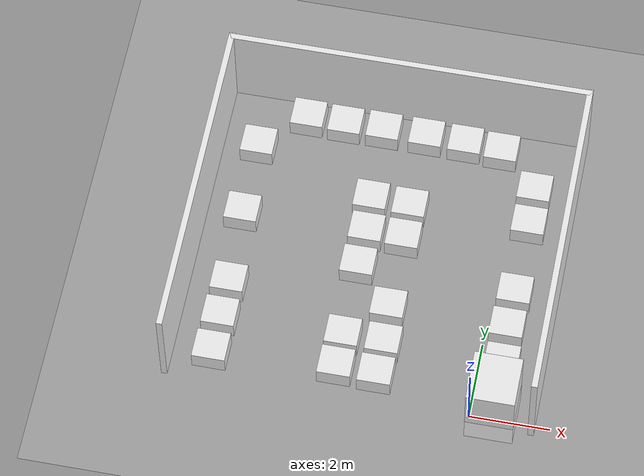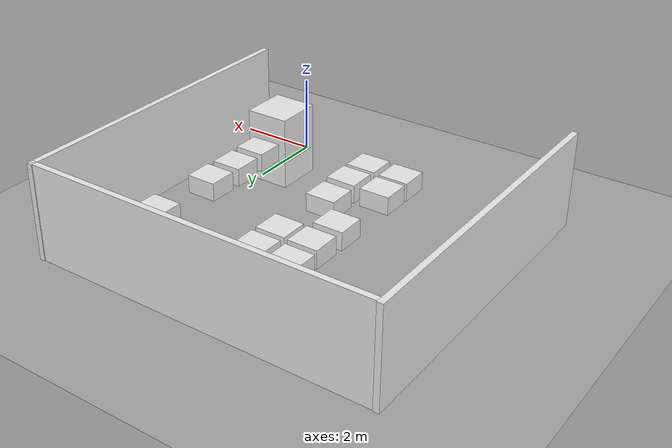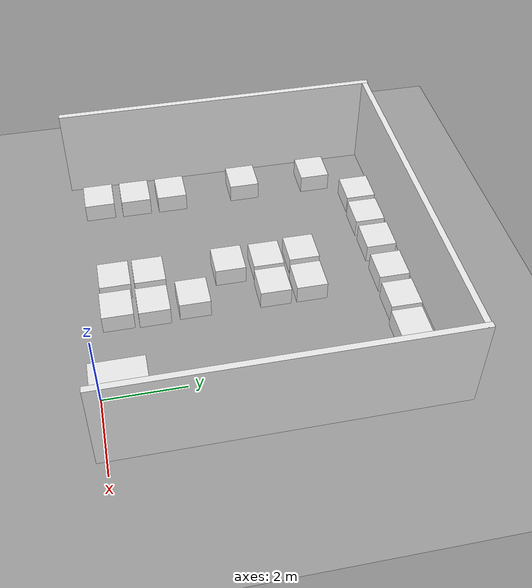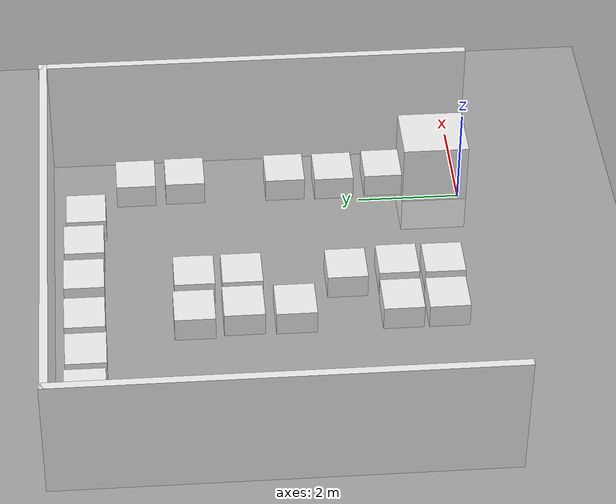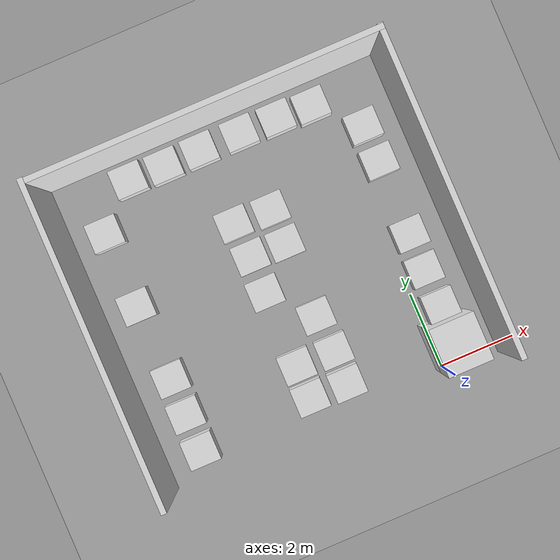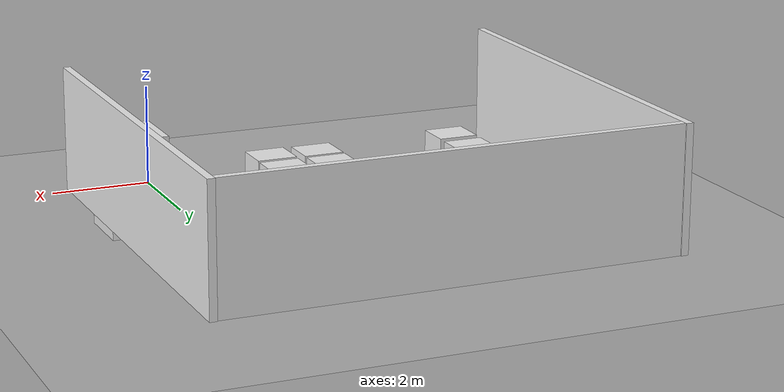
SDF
<sdf version="1.6">
 <world name="default">
  <light name="sun" type="directional">
   <pose>0 0 10 0 -0 0</pose>
   <diffuse>0.8 0.8 0.8 1</diffuse>
   <specular>0.2 0.2 0.2 1</specular>
   <attenuation>
    <range>1000</range>
    <constant>0.9</constant>
    <linear>0.01</linear>
    <quadratic>0.001</quadratic>
   </attenuation>
   <direction>-0.5 0.1 -0.9</direction>
  </light>
  <model name="ground_plane">
   <static>1</static>
   <link name="link">
    <collision name="collision">
     <geometry><plane><normal>0 0 1</normal><size>100 100</size></plane></geometry>
     <surface>
      <contact><collide_bitmask>65535</collide_bitmask></contact>
      <friction><ode><mu>100</mu><mu2>50</mu2></ode></friction>
     </surface>
    </collision>
    <visual name="visual">
     <cast_shadows>0</cast_shadows>
     <geometry><plane><normal>0 0 1</normal><size>100 100</size></plane></geometry>
     <material>
      <script><uri>file://media/materials/scripts/gazebo.material</uri><name>Gazebo/Grey</name></script>
     </material>
    </visual>
   </link>
  </model>
  <gravity>0 0 -9.8</gravity>
  <magnetic_field>6e-06 2.3e-05 -4.2e-05</magnetic_field>
  <atmosphere type="adiabatic"/>
  <physics name="default_physics" default="0" type="ode">
   <max_step_size>0.001</max_step_size>
   <real_time_factor>1</real_time_factor>
   <real_time_update_rate>1000</real_time_update_rate>
  </physics>
  <scene><ambient>0.4 0.4 0.4 1</ambient><background>0.7 0.7 0.7 1</background><shadows>1</shadows></scene>
  <audio><device>default</device></audio>
  <spherical_coordinates>
   <surface_model>EARTH_WGS84</surface_model>
   <latitude_deg>0</latitude_deg>
   <longitude_deg>0</longitude_deg>
   <elevation>0</elevation>
   <heading_deg>0</heading_deg>
  </spherical_coordinates>
  <model name="unit_box">
   <pose>0.518834 0.484919 0.249258 0 -0 1e-06</pose>
   <link name="link">
    <inertial>
     <mass>1</mass>
     <inertia>
      <ixx>0.166667</ixx>
      <ixy>0</ixy>
      <ixz>0</ixz>
      <iyy>0.166667</iyy>
      <iyz>0</iyz>
      <izz>0.166667</izz>
     </inertia>
    </inertial>
    <collision name="collision"><geometry><box><size>1.20126 1.28837 2.00595</size></box></geometry></collision>
    <visual name="visual">
     <geometry><box><size>1.20126 1.28837 2.00595</size></box></geometry>
     <material>
      <script><name>Gazebo/White</name><uri>file://media/materials/scripts/gazebo.material</uri></script>
     </material>
    </visual>
   </link>
  </model>
  <model name="unit_box_clone">
   <pose>0.5497 1.49077 0.249258 0 -0 1e-06</pose>
   <link name="link">
    <inertial>
     <mass>1</mass>
     <inertia>
      <ixx>0.166667</ixx>
      <ixy>0</ixy>
      <ixz>0</ixz>
      <iyy>0.166667</iyy>
      <iyz>0</iyz>
      <izz>0.166667</izz>
     </inertia>
    </inertial>
    <collision name="collision">
     <geometry><box><size>0.832462 0.776172 0.498517</size></box></geometry>
    </collision>
    <visual name="visual">
     <geometry><box><size>0.832462 0.776172 0.498517</size></box></geometry>
     <material>
      <script><name>Gazebo/White</name><uri>file://media/materials/scripts/gazebo.material</uri></script>
     </material>
    </visual>
   </link>
  </model>
  <model name="unit_box_clone_0">
   <pose>0.542038 3.47351 0.249258 0 -0 1e-06</pose>
   <link name="link">
    <inertial>
     <mass>1</mass>
     <inertia>
      <ixx>0.166667</ixx>
      <ixy>0</ixy>
      <ixz>0</ixz>
      <iyy>0.166667</iyy>
      <iyz>0</iyz>
      <izz>0.166667</izz>
     </inertia>
    </inertial>
    <collision name="collision">
     <geometry><box><size>0.832462 0.776172 0.498517</size></box></geometry>
    </collision>
    <visual name="visual">
     <geometry><box><size>0.832462 0.776172 0.498517</size></box></geometry>
     <material>
      <script><name>Gazebo/White</name><uri>file://media/materials/scripts/gazebo.material</uri></script>
     </material>
    </visual>
   </link>
  </model>
  <model name="unit_box_clone_1">
   <pose>0.55967 5.47509 0.249258 0 -0 1e-06</pose>
   <link name="link">
    <inertial>
     <mass>1</mass>
     <inertia>
      <ixx>0.166667</ixx>
      <ixy>0</ixy>
      <ixz>0</ixz>
      <iyy>0.166667</iyy>
      <iyz>0</iyz>
      <izz>0.166667</izz>
     </inertia>
    </inertial>
    <collision name="collision">
     <geometry><box><size>0.832462 0.776172 0.498517</size></box></geometry>
    </collision>
    <visual name="visual">
     <geometry><box><size>0.832462 0.776172 0.498517</size></box></geometry>
     <material>
      <script><name>Gazebo/White</name><uri>file://media/materials/scripts/gazebo.material</uri></script>
     </material>
    </visual>
   </link>
  </model>
  <model name="unit_box_clone_2">
   <pose>-2.41813 7.52932 0.249258 0 -0 1e-06</pose>
   <link name="link">
    <inertial>
     <mass>1</mass>
     <inertia>
      <ixx>0.166667</ixx>
      <ixy>0</ixy>
      <ixz>0</ixz>
      <iyy>0.166667</iyy>
      <iyz>0</iyz>
      <izz>0.166667</izz>
     </inertia>
    </inertial>
    <collision name="collision">
     <geometry><box><size>0.832462 0.776172 0.498517</size></box></geometry>
    </collision>
    <visual name="visual">
     <geometry><box><size>0.832462 0.776172 0.498517</size></box></geometry>
     <material>
      <script><name>Gazebo/White</name><uri>file://media/materials/scripts/gazebo.material</uri></script>
     </material>
    </visual>
   </link>
  </model>
  <model name="unit_box_clone_3">
   <pose>0.543198 6.45342 0.249258 0 -0 1e-06</pose>
   <link name="link">
    <inertial>
     <mass>1</mass>
     <inertia>
      <ixx>0.166667</ixx>
      <ixy>0</ixy>
      <ixz>0</ixz>
      <iyy>0.166667</iyy>
      <iyz>0</iyz>
      <izz>0.166667</izz>
     </inertia>
    </inertial>
    <collision name="collision">
     <geometry><box><size>0.832462 0.776172 0.498517</size></box></geometry>
    </collision>
    <visual name="visual">
     <geometry><box><size>0.832462 0.776172 0.498517</size></box></geometry>
     <material>
      <script><name>Gazebo/White</name><uri>file://media/materials/scripts/gazebo.material</uri></script>
     </material>
    </visual>
   </link>
  </model>
  <model name="unit_box_clone_4">
   <pose>-2.45822 2.49616 0.249258 0 -0 1e-06</pose>
   <link name="link">
    <inertial>
     <mass>1</mass>
     <inertia>
      <ixx>0.166667</ixx>
      <ixy>0</ixy>
      <ixz>0</ixz>
      <iyy>0.166667</iyy>
      <iyz>0</iyz>
      <izz>0.166667</izz>
     </inertia>
    </inertial>
    <collision name="collision">
     <geometry><box><size>0.832462 0.776172 0.498517</size></box></geometry>
    </collision>
    <visual name="visual">
     <geometry><box><size>0.832462 0.776172 0.498517</size></box></geometry>
     <material>
      <script><name>Gazebo/White</name><uri>file://media/materials/scripts/gazebo.material</uri></script>
     </material>
    </visual>
   </link>
  </model>
  <model name="unit_box_clone_5">
   <pose>-1.40949 7.51079 0.249258 0 -0 1e-06</pose>
   <link name="link">
    <inertial>
     <mass>1</mass>
     <inertia>
      <ixx>0.166667</ixx>
      <ixy>0</ixy>
      <ixz>0</ixz>
      <iyy>0.166667</iyy>
      <iyz>0</iyz>
      <izz>0.166667</izz>
     </inertia>
    </inertial>
    <collision name="collision">
     <geometry><box><size>0.832462 0.776172 0.498517</size></box></geometry>
    </collision>
    <visual name="visual">
     <geometry><box><size>0.832462 0.776172 0.498517</size></box></geometry>
     <material>
      <script><name>Gazebo/White</name><uri>file://media/materials/scripts/gazebo.material</uri></script>
     </material>
    </visual>
   </link>
  </model>
  <model name="unit_box_clone_7">
   <pose>-2.45609 4.50801 0.249258 0 -0 1.7e-05</pose>
   <link name="link">
    <inertial>
     <mass>1</mass>
     <inertia>
      <ixx>0.166667</ixx>
      <ixy>0</ixy>
      <ixz>0</ixz>
      <iyy>0.166667</iyy>
      <iyz>0</iyz>
      <izz>0.166667</izz>
     </inertia>
    </inertial>
    <collision name="collision">
     <geometry><box><size>0.832462 0.776172 0.498517</size></box></geometry>
    </collision>
    <visual name="visual">
     <geometry><box><size>0.832462 0.776172 0.498517</size></box></geometry>
     <material>
      <script><name>Gazebo/White</name><uri>file://media/materials/scripts/gazebo.material</uri></script>
     </material>
    </visual>
   </link>
  </model>
  <model name="unit_box_clone_8">
   <pose>-2.39586 1.50119 0.249258 0 -0 1e-06</pose>
   <link name="link">
    <inertial>
     <mass>1</mass>
     <inertia>
      <ixx>0.166667</ixx>
      <ixy>0</ixy>
      <ixz>0</ixz>
      <iyy>0.166667</iyy>
      <iyz>0</iyz>
      <izz>0.166667</izz>
     </inertia>
    </inertial>
    <collision name="collision">
     <geometry><box><size>0.832462 0.776172 0.498517</size></box></geometry>
    </collision>
    <visual name="visual">
     <geometry><box><size>0.832462 0.776172 0.498517</size></box></geometry>
     <material>
      <script><name>Gazebo/White</name><uri>file://media/materials/scripts/gazebo.material</uri></script>
     </material>
    </visual>
   </link>
  </model>
  <model name="unit_box_clone_9">
   <pose>-3.39692 4.53196 0.249258 0 -0 1e-06</pose>
   <link name="link">
    <inertial>
     <mass>1</mass>
     <inertia>
      <ixx>0.166667</ixx>
      <ixy>0</ixy>
      <ixz>0</ixz>
      <iyy>0.166667</iyy>
      <iyz>0</iyz>
      <izz>0.166667</izz>
     </inertia>
    </inertial>
    <collision name="collision">
     <geometry><box><size>0.832462 0.776172 0.498517</size></box></geometry>
    </collision>
    <visual name="visual">
     <geometry><box><size>0.832462 0.776172 0.498517</size></box></geometry>
     <material>
      <script><name>Gazebo/White</name><uri>file://media/materials/scripts/gazebo.material</uri></script>
     </material>
    </visual>
   </link>
  </model>
  <model name="unit_box_clone_10">
   <pose>-3.41672 0.646729 0.249258 0 -0 1e-06</pose>
   <link name="link">
    <inertial>
     <mass>1</mass>
     <inertia>
      <ixx>0.166667</ixx>
      <ixy>0</ixy>
      <ixz>0</ixz>
      <iyy>0.166667</iyy>
      <iyz>0</iyz>
      <izz>0.166667</izz>
     </inertia>
    </inertial>
    <collision name="collision">
     <geometry><box><size>0.832462 0.776172 0.498517</size></box></geometry>
    </collision>
    <visual name="visual">
     <geometry><box><size>0.832462 0.776172 0.498517</size></box></geometry>
     <material>
      <script><name>Gazebo/White</name><uri>file://media/materials/scripts/gazebo.material</uri></script>
     </material>
    </visual>
   </link>
  </model>
  <model name="unit_box_clone_11">
   <pose>-6.47938 2.48543 0.249258 0 -0 1e-06</pose>
   <link name="link">
    <inertial>
     <mass>1</mass>
     <inertia>
      <ixx>0.166667</ixx>
      <ixy>0</ixy>
      <ixz>0</ixz>
      <iyy>0.166667</iyy>
      <iyz>0</iyz>
      <izz>0.166667</izz>
     </inertia>
    </inertial>
    <collision name="collision">
     <geometry><box><size>0.832462 0.776172 0.498517</size></box></geometry>
    </collision>
    <visual name="visual">
     <geometry><box><size>0.832462 0.776172 0.498517</size></box></geometry>
     <material>
      <script><name>Gazebo/White</name><uri>file://media/materials/scripts/gazebo.material</uri></script>
     </material>
    </visual>
   </link>
  </model>
  <model name="unit_box_clone_12">
   <pose>-6.48928 1.49952 0.249258 0 -0 1e-06</pose>
   <link name="link">
    <inertial>
     <mass>1</mass>
     <inertia>
      <ixx>0.166667</ixx>
      <ixy>0</ixy>
      <ixz>0</ixz>
      <iyy>0.166667</iyy>
      <iyz>0</iyz>
      <izz>0.166667</izz>
     </inertia>
    </inertial>
    <collision name="collision">
     <geometry><box><size>0.832462 0.776172 0.498517</size></box></geometry>
    </collision>
    <visual name="visual">
     <geometry><box><size>0.832462 0.776172 0.498517</size></box></geometry>
     <material>
      <script><name>Gazebo/White</name><uri>file://media/materials/scripts/gazebo.material</uri></script>
     </material>
    </visual>
   </link>
  </model>
  <model name="unit_box_clone_13">
   <pose>-5.47189 7.54665 0.249258 0 -0 1e-06</pose>
   <link name="link">
    <inertial>
     <mass>1</mass>
     <inertia>
      <ixx>0.166667</ixx>
      <ixy>0</ixy>
      <ixz>0</ixz>
      <iyy>0.166667</iyy>
      <iyz>0</iyz>
      <izz>0.166667</izz>
     </inertia>
    </inertial>
    <collision name="collision">
     <geometry><box><size>0.832462 0.776172 0.498517</size></box></geometry>
    </collision>
    <visual name="visual">
     <geometry><box><size>0.832462 0.776172 0.498517</size></box></geometry>
     <material>
      <script><name>Gazebo/White</name><uri>file://media/materials/scripts/gazebo.material</uri></script>
     </material>
    </visual>
   </link>
  </model>
  <model name="unit_box_clone_14">
   <pose>-2.41544 0.611316 0.249258 0 -0 0.000133</pose>
   <link name="link">
    <inertial>
     <mass>1</mass>
     <inertia>
      <ixx>0.166667</ixx>
      <ixy>0</ixy>
      <ixz>0</ixz>
      <iyy>0.166667</iyy>
      <iyz>0</iyz>
      <izz>0.166667</izz>
     </inertia>
    </inertial>
    <collision name="collision">
     <geometry><box><size>0.832462 0.776172 0.498517</size></box></geometry>
    </collision>
    <visual name="visual">
     <geometry><box><size>0.832462 0.776172 0.498517</size></box></geometry>
     <material>
      <script><name>Gazebo/White</name><uri>file://media/materials/scripts/gazebo.material</uri></script>
     </material>
    </visual>
   </link>
  </model>
  <model name="unit_box_clone_15">
   <pose>-6.5582 4.51505 0.249258 0 -0 1e-06</pose>
   <link name="link">
    <inertial>
     <mass>1</mass>
     <inertia>
      <ixx>0.166667</ixx>
      <ixy>0</ixy>
      <ixz>0</ixz>
      <iyy>0.166667</iyy>
      <iyz>0</iyz>
      <izz>0.166667</izz>
     </inertia>
    </inertial>
    <collision name="collision">
     <geometry><box><size>0.832462 0.776172 0.498517</size></box></geometry>
    </collision>
    <visual name="visual">
     <geometry><box><size>0.832462 0.776172 0.498517</size></box></geometry>
     <material>
      <script><name>Gazebo/White</name><uri>file://media/materials/scripts/gazebo.material</uri></script>
     </material>
    </visual>
   </link>
  </model>
  <model name="unit_box_clone_16">
   <pose>-6.50451 0.518649 0.249258 0 -0 1e-06</pose>
   <link name="link">
    <inertial>
     <mass>1</mass>
     <inertia>
      <ixx>0.166667</ixx>
      <ixy>0</ixy>
      <ixz>0</ixz>
      <iyy>0.166667</iyy>
      <iyz>0</iyz>
      <izz>0.166667</izz>
     </inertia>
    </inertial>
    <collision name="collision">
     <geometry><box><size>0.832462 0.776172 0.498517</size></box></geometry>
    </collision>
    <visual name="visual">
     <geometry><box><size>0.832462 0.776172 0.498517</size></box></geometry>
     <material>
      <script><name>Gazebo/White</name><uri>file://media/materials/scripts/gazebo.material</uri></script>
     </material>
    </visual>
   </link>
  </model>
  <model name="unit_box_clone_17">
   <pose>-0.470282 7.45877 0.249258 0 -0 1e-06</pose>
   <link name="link">
    <inertial>
     <mass>1</mass>
     <inertia>
      <ixx>0.166667</ixx>
      <ixy>0</ixy>
      <ixz>0</ixz>
      <iyy>0.166667</iyy>
      <iyz>0</iyz>
      <izz>0.166667</izz>
     </inertia>
    </inertial>
    <collision name="collision">
     <geometry><box><size>0.832462 0.776172 0.498517</size></box></geometry>
    </collision>
    <visual name="visual">
     <geometry><box><size>0.832462 0.776172 0.498517</size></box></geometry>
     <material>
      <script><name>Gazebo/White</name><uri>file://media/materials/scripts/gazebo.material</uri></script>
     </material>
    </visual>
   </link>
  </model>
  <model name="unit_box_clone_19">
   <pose>-2.46049 5.42737 0.249258 0 -0 1e-06</pose>
   <link name="link">
    <inertial>
     <mass>1</mass>
     <inertia>
      <ixx>0.166667</ixx>
      <ixy>0</ixy>
      <ixz>0</ixz>
      <iyy>0.166667</iyy>
      <iyz>0</iyz>
      <izz>0.166667</izz>
     </inertia>
    </inertial>
    <collision name="collision">
     <geometry><box><size>0.832462 0.776172 0.498517</size></box></geometry>
    </collision>
    <visual name="visual">
     <geometry><box><size>0.832462 0.776172 0.498517</size></box></geometry>
     <material>
      <script><name>Gazebo/White</name><uri>file://media/materials/scripts/gazebo.material</uri></script>
     </material>
    </visual>
   </link>
  </model>
  <model name="unit_box_clone_21">
   <pose>-3.45665 5.46799 0.249258 0 -0 1e-06</pose>
   <link name="link">
    <inertial>
     <mass>1</mass>
     <inertia>
      <ixx>0.166667</ixx>
      <ixy>0</ixy>
      <ixz>0</ixz>
      <iyy>0.166667</iyy>
      <iyz>0</iyz>
      <izz>0.166667</izz>
     </inertia>
    </inertial>
    <collision name="collision">
     <geometry><box><size>0.832462 0.776172 0.498517</size></box></geometry>
    </collision>
    <visual name="visual">
     <geometry><box><size>0.832462 0.776172 0.498517</size></box></geometry>
     <material>
      <script><name>Gazebo/White</name><uri>file://media/materials/scripts/gazebo.material</uri></script>
     </material>
    </visual>
   </link>
  </model>
  <model name="unit_box_clone_22">
   <pose>-3.41126 1.51793 0.249258 0 -0 1e-06</pose>
   <link name="link">
    <inertial>
     <mass>1</mass>
     <inertia>
      <ixx>0.166667</ixx>
      <ixy>0</ixy>
      <ixz>0</ixz>
      <iyy>0.166667</iyy>
      <iyz>0</iyz>
      <izz>0.166667</izz>
     </inertia>
    </inertial>
    <collision name="collision">
     <geometry><box><size>0.832462 0.776172 0.498517</size></box></geometry>
    </collision>
    <visual name="visual">
     <geometry><box><size>0.832462 0.776172 0.498517</size></box></geometry>
     <material>
      <script><name>Gazebo/White</name><uri>file://media/materials/scripts/gazebo.material</uri></script>
     </material>
    </visual>
   </link>
  </model>
  <model name="building_template_model">
   <pose>-2.98967 4.02339 0 0 -0 0</pose>
   <link name="Wall_0">
    <collision name="Wall_0_Collision">
     <geometry><box><size>8.48924 0.15 2.5</size></box></geometry>
     <pose>0 0 1.25 0 -0 0</pose>
    </collision>
    <visual name="Wall_0_Visual">
     <pose>0 0 1.25 0 -0 0</pose>
     <geometry><box><size>8.48924 0.15 2.5</size></box></geometry>
     <material>
      <script><uri>file://media/materials/scripts/gazebo.material</uri><name>Gazebo/White</name></script>
      <ambient>1 1 1 1</ambient>
     </material>
     <meta><layer>0</layer></meta>
    </visual>
    <pose>-4.55 0.007581 0 0 -0 1.5708</pose>
   </link>
   <link name="Wall_1">
    <collision name="Wall_1_Collision">
     <geometry><box><size>9.25 0.15 2.5</size></box></geometry>
     <pose>0 0 1.25 0 -0 0</pose>
    </collision>
    <visual name="Wall_1_Visual">
     <pose>0 0 1.25 0 -0 0</pose>
     <geometry><box><size>9.25 0.15 2.5</size></box></geometry>
     <material>
      <script><uri>file://media/materials/scripts/gazebo.material</uri><name>Gazebo/White</name></script>
      <ambient>1 1 1 1</ambient>
     </material>
     <meta><layer>0</layer></meta>
    </visual>
    <pose>0 4.15427 0 0 -0 0</pose>
   </link>
   <link name="Wall_4">
    <collision name="Wall_4_Collision">
     <geometry><box><size>8.5044 0.15 2.5</size></box></geometry>
     <pose>0 0 1.25 0 -0 0</pose>
    </collision>
    <visual name="Wall_4_Visual">
     <pose>0 0 1.25 0 -0 0</pose>
     <geometry><box><size>8.5044 0.15 2.5</size></box></geometry>
     <material>
      <script><uri>file://media/materials/scripts/gazebo.material</uri><name>Gazebo/White</name></script>
      <ambient>1 1 1 1</ambient>
     </material>
     <meta><layer>0</layer></meta>
    </visual>
    <pose>4.55 -0 0 0 -0 -1.5708</pose>
   </link>
   <static>1</static>
  </model>
  <model name="unit_box_clone_22_clone">
   <pose>-3.51782 7.53227 0.249258 0 -0 1e-06</pose>
   <link name="link">
    <inertial>
     <mass>1</mass>
     <inertia>
      <ixx>0.166667</ixx>
      <ixy>0</ixy>
      <ixz>0</ixz>
      <iyy>0.166667</iyy>
      <iyz>0</iyz>
      <izz>0.166667</izz>
     </inertia>
    </inertial>
    <collision name="collision">
     <geometry><box><size>0.832462 0.776172 0.498517</size></box></geometry>
    </collision>
    <visual name="visual">
     <geometry><box><size>0.832462 0.776172 0.498517</size></box></geometry>
     <material>
      <script><name>Gazebo/White</name><uri>file://media/materials/scripts/gazebo.material</uri></script>
     </material>
    </visual>
   </link>
  </model>
  <model name="unit_box_clone_22_clone_0">
   <pose>-3.41838 3.54905 0.249258 0 -0 1e-06</pose>
   <link name="link">
    <inertial>
     <mass>1</mass>
     <inertia>
      <ixx>0.166667</ixx>
      <ixy>0</ixy>
      <ixz>0</ixz>
      <iyy>0.166667</iyy>
      <iyz>0</iyz>
      <izz>0.166667</izz>
     </inertia>
    </inertial>
    <collision name="collision">
     <geometry><box><size>0.832462 0.776172 0.498517</size></box></geometry>
    </collision>
    <visual name="visual">
     <geometry><box><size>0.832462 0.776172 0.498517</size></box></geometry>
     <material>
      <script><name>Gazebo/White</name><uri>file://media/materials/scripts/gazebo.material</uri></script>
     </material>
    </visual>
   </link>
  </model>
  <model name="unit_box_clone_22_clone_1">
   <pose>-6.55843 6.52202 0.249258 0 -0 1e-06</pose>
   <link name="link">
    <inertial>
     <mass>1</mass>
     <inertia>
      <ixx>0.166667</ixx>
      <ixy>0</ixy>
      <ixz>0</ixz>
      <iyy>0.166667</iyy>
      <iyz>0</iyz>
      <izz>0.166667</izz>
     </inertia>
    </inertial>
    <collision name="collision">
     <geometry><box><size>0.832462 0.776172 0.498517</size></box></geometry>
    </collision>
    <visual name="visual">
     <geometry><box><size>0.832462 0.776172 0.498517</size></box></geometry>
     <material>
      <script><name>Gazebo/White</name><uri>file://media/materials/scripts/gazebo.material</uri></script>
     </material>
    </visual>
   </link>
  </model>
  <model name="unit_box_clone_22_clone_2">
   <pose>0.520277 2.49449 0.249258 0 -0 1e-06</pose>
   <link name="link">
    <inertial>
     <mass>1</mass>
     <inertia>
      <ixx>0.166667</ixx>
      <ixy>0</ixy>
      <ixz>0</ixz>
      <iyy>0.166667</iyy>
      <iyz>0</iyz>
      <izz>0.166667</izz>
     </inertia>
    </inertial>
    <collision name="collision">
     <geometry><box><size>0.832462 0.776172 0.498517</size></box></geometry>
    </collision>
    <visual name="visual">
     <geometry><box><size>0.832462 0.776172 0.498517</size></box></geometry>
     <material>
      <script><name>Gazebo/White</name><uri>file://media/materials/scripts/gazebo.material</uri></script>
     </material>
    </visual>
   </link>
  </model>
  <model name="unit_box_clone_22_clone_3">
   <pose>-4.50332 7.52217 0.249258 0 -0 1e-06</pose>
   <link name="link">
    <inertial>
     <mass>1</mass>
     <inertia>
      <ixx>0.166667</ixx>
      <ixy>0</ixy>
      <ixz>0</ixz>
      <iyy>0.166667</iyy>
      <iyz>0</iyz>
      <izz>0.166667</izz>
     </inertia>
    </inertial>
    <collision name="collision">
     <geometry><box><size>0.832462 0.776172 0.498517</size></box></geometry>
    </collision>
    <visual name="visual">
     <geometry><box><size>0.832462 0.776172 0.498517</size></box></geometry>
     <material>
      <script><name>Gazebo/White</name><uri>file://media/materials/scripts/gazebo.material</uri></script>
     </material>
    </visual>
   </link>
  </model>
 </world>
</sdf>
